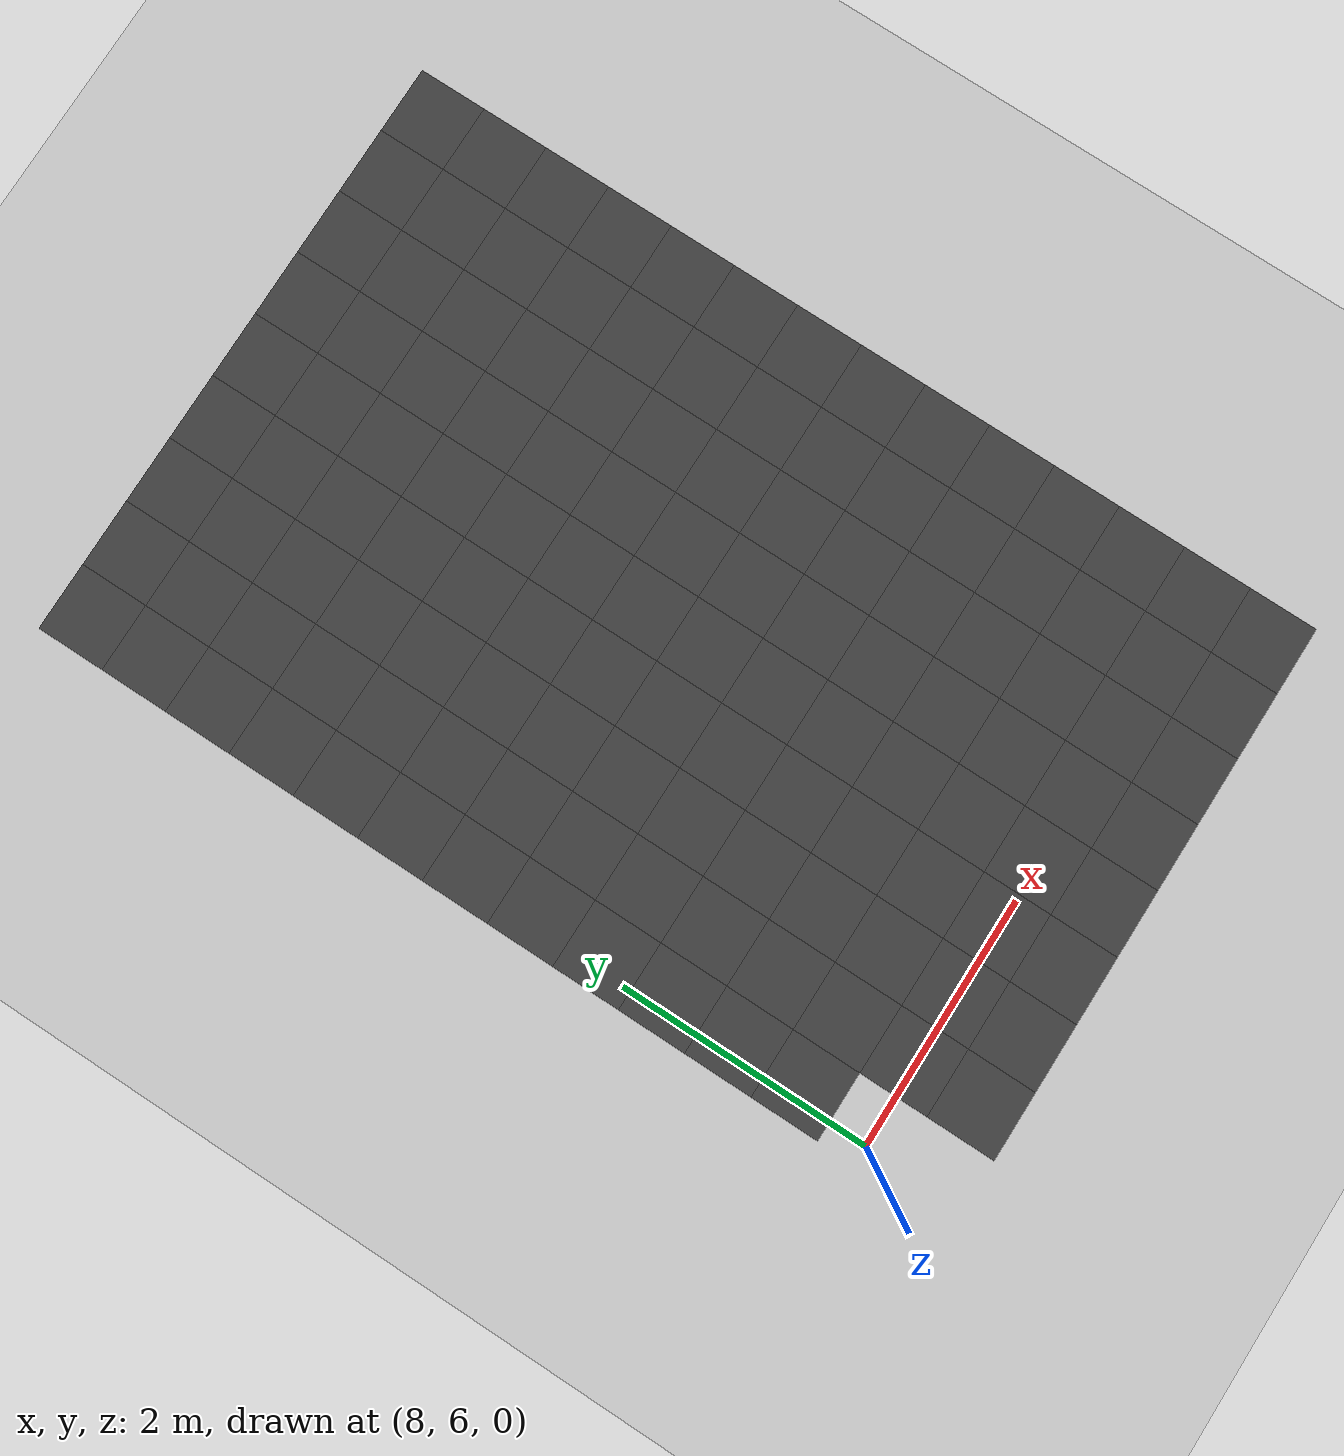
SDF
<sdf version="1.7">
 <world name="map_14802">
  <model name="ground_plane">
   <static>true</static>
   <link name="link">
    <collision name="collision">
     <geometry><plane><normal>0 0 1</normal><size>200 200</size></plane></geometry>
    </collision>
    <visual name="visual">
     <geometry><plane><normal>0 0 1</normal><size>200 200</size></plane></geometry>
     <material><ambient>0.8 0.8 0.8 1</ambient><diffuse>0.8 0.8 0.8 1</diffuse></material>
    </visual>
   </link>
  </model>
  <model name="maze_environment">
   <static>true</static>
   <link name="wall_41">
    <pose>8.250 12.250 0.500 0 0 0</pose>
    <collision name="col"><geometry><box><size>0.5 0.5 1.0</size></box></geometry></collision>
    <visual name="vis">
     <geometry><box><size>0.5 0.5 1.0</size></box></geometry>
     <material><ambient>0.15 0.15 0.15 1</ambient><diffuse>0.25 0.25 0.25 1</diffuse></material>
    </visual>
   </link>
   <link name="wall_42">
    <pose>8.750 12.250 0.500 0 0 0</pose>
    <collision name="col"><geometry><box><size>0.5 0.5 1.0</size></box></geometry></collision>
    <visual name="vis">
     <geometry><box><size>0.5 0.5 1.0</size></box></geometry>
     <material><ambient>0.15 0.15 0.15 1</ambient><diffuse>0.25 0.25 0.25 1</diffuse></material>
    </visual>
   </link>
   <link name="wall_43">
    <pose>9.250 12.250 0.500 0 0 0</pose>
    <collision name="col"><geometry><box><size>0.5 0.5 1.0</size></box></geometry></collision>
    <visual name="vis">
     <geometry><box><size>0.5 0.5 1.0</size></box></geometry>
     <material><ambient>0.15 0.15 0.15 1</ambient><diffuse>0.25 0.25 0.25 1</diffuse></material>
    </visual>
   </link>
   <link name="wall_44">
    <pose>9.750 12.250 0.500 0 0 0</pose>
    <collision name="col"><geometry><box><size>0.5 0.5 1.0</size></box></geometry></collision>
    <visual name="vis">
     <geometry><box><size>0.5 0.5 1.0</size></box></geometry>
     <material><ambient>0.15 0.15 0.15 1</ambient><diffuse>0.25 0.25 0.25 1</diffuse></material>
    </visual>
   </link>
   <link name="wall_45">
    <pose>10.250 12.250 0.500 0 0 0</pose>
    <collision name="col"><geometry><box><size>0.5 0.5 1.0</size></box></geometry></collision>
    <visual name="vis">
     <geometry><box><size>0.5 0.5 1.0</size></box></geometry>
     <material><ambient>0.15 0.15 0.15 1</ambient><diffuse>0.25 0.25 0.25 1</diffuse></material>
    </visual>
   </link>
   <link name="wall_46">
    <pose>10.750 12.250 0.500 0 0 0</pose>
    <collision name="col"><geometry><box><size>0.5 0.5 1.0</size></box></geometry></collision>
    <visual name="vis">
     <geometry><box><size>0.5 0.5 1.0</size></box></geometry>
     <material><ambient>0.15 0.15 0.15 1</ambient><diffuse>0.25 0.25 0.25 1</diffuse></material>
    </visual>
   </link>
   <link name="wall_47">
    <pose>11.250 12.250 0.500 0 0 0</pose>
    <collision name="col"><geometry><box><size>0.5 0.5 1.0</size></box></geometry></collision>
    <visual name="vis">
     <geometry><box><size>0.5 0.5 1.0</size></box></geometry>
     <material><ambient>0.15 0.15 0.15 1</ambient><diffuse>0.25 0.25 0.25 1</diffuse></material>
    </visual>
   </link>
   <link name="wall_48">
    <pose>11.750 12.250 0.500 0 0 0</pose>
    <collision name="col"><geometry><box><size>0.5 0.5 1.0</size></box></geometry></collision>
    <visual name="vis">
     <geometry><box><size>0.5 0.5 1.0</size></box></geometry>
     <material><ambient>0.15 0.15 0.15 1</ambient><diffuse>0.25 0.25 0.25 1</diffuse></material>
    </visual>
   </link>
   <link name="wall_49">
    <pose>12.250 12.250 0.500 0 0 0</pose>
    <collision name="col"><geometry><box><size>0.5 0.5 1.0</size></box></geometry></collision>
    <visual name="vis">
     <geometry><box><size>0.5 0.5 1.0</size></box></geometry>
     <material><ambient>0.15 0.15 0.15 1</ambient><diffuse>0.25 0.25 0.25 1</diffuse></material>
    </visual>
   </link>
   <link name="wall_88">
    <pose>8.250 11.750 0.500 0 0 0</pose>
    <collision name="col"><geometry><box><size>0.5 0.5 1.0</size></box></geometry></collision>
    <visual name="vis">
     <geometry><box><size>0.5 0.5 1.0</size></box></geometry>
     <material><ambient>0.15 0.15 0.15 1</ambient><diffuse>0.25 0.25 0.25 1</diffuse></material>
    </visual>
   </link>
   <link name="wall_89">
    <pose>8.750 11.750 0.500 0 0 0</pose>
    <collision name="col"><geometry><box><size>0.5 0.5 1.0</size></box></geometry></collision>
    <visual name="vis">
     <geometry><box><size>0.5 0.5 1.0</size></box></geometry>
     <material><ambient>0.15 0.15 0.15 1</ambient><diffuse>0.25 0.25 0.25 1</diffuse></material>
    </visual>
   </link>
   <link name="wall_90">
    <pose>9.250 11.750 0.500 0 0 0</pose>
    <collision name="col"><geometry><box><size>0.5 0.5 1.0</size></box></geometry></collision>
    <visual name="vis">
     <geometry><box><size>0.5 0.5 1.0</size></box></geometry>
     <material><ambient>0.15 0.15 0.15 1</ambient><diffuse>0.25 0.25 0.25 1</diffuse></material>
    </visual>
   </link>
   <link name="wall_91">
    <pose>9.750 11.750 0.500 0 0 0</pose>
    <collision name="col"><geometry><box><size>0.5 0.5 1.0</size></box></geometry></collision>
    <visual name="vis">
     <geometry><box><size>0.5 0.5 1.0</size></box></geometry>
     <material><ambient>0.15 0.15 0.15 1</ambient><diffuse>0.25 0.25 0.25 1</diffuse></material>
    </visual>
   </link>
   <link name="wall_92">
    <pose>10.250 11.750 0.500 0 0 0</pose>
    <collision name="col"><geometry><box><size>0.5 0.5 1.0</size></box></geometry></collision>
    <visual name="vis">
     <geometry><box><size>0.5 0.5 1.0</size></box></geometry>
     <material><ambient>0.15 0.15 0.15 1</ambient><diffuse>0.25 0.25 0.25 1</diffuse></material>
    </visual>
   </link>
   <link name="wall_93">
    <pose>10.750 11.750 0.500 0 0 0</pose>
    <collision name="col"><geometry><box><size>0.5 0.5 1.0</size></box></geometry></collision>
    <visual name="vis">
     <geometry><box><size>0.5 0.5 1.0</size></box></geometry>
     <material><ambient>0.15 0.15 0.15 1</ambient><diffuse>0.25 0.25 0.25 1</diffuse></material>
    </visual>
   </link>
   <link name="wall_94">
    <pose>11.250 11.750 0.500 0 0 0</pose>
    <collision name="col"><geometry><box><size>0.5 0.5 1.0</size></box></geometry></collision>
    <visual name="vis">
     <geometry><box><size>0.5 0.5 1.0</size></box></geometry>
     <material><ambient>0.15 0.15 0.15 1</ambient><diffuse>0.25 0.25 0.25 1</diffuse></material>
    </visual>
   </link>
   <link name="wall_95">
    <pose>11.750 11.750 0.500 0 0 0</pose>
    <collision name="col"><geometry><box><size>0.5 0.5 1.0</size></box></geometry></collision>
    <visual name="vis">
     <geometry><box><size>0.5 0.5 1.0</size></box></geometry>
     <material><ambient>0.15 0.15 0.15 1</ambient><diffuse>0.25 0.25 0.25 1</diffuse></material>
    </visual>
   </link>
   <link name="wall_96">
    <pose>12.250 11.750 0.500 0 0 0</pose>
    <collision name="col"><geometry><box><size>0.5 0.5 1.0</size></box></geometry></collision>
    <visual name="vis">
     <geometry><box><size>0.5 0.5 1.0</size></box></geometry>
     <material><ambient>0.15 0.15 0.15 1</ambient><diffuse>0.25 0.25 0.25 1</diffuse></material>
    </visual>
   </link>
   <link name="wall_130">
    <pose>8.250 11.250 0.500 0 0 0</pose>
    <collision name="col"><geometry><box><size>0.5 0.5 1.0</size></box></geometry></collision>
    <visual name="vis">
     <geometry><box><size>0.5 0.5 1.0</size></box></geometry>
     <material><ambient>0.15 0.15 0.15 1</ambient><diffuse>0.25 0.25 0.25 1</diffuse></material>
    </visual>
   </link>
   <link name="wall_131">
    <pose>8.750 11.250 0.500 0 0 0</pose>
    <collision name="col"><geometry><box><size>0.5 0.5 1.0</size></box></geometry></collision>
    <visual name="vis">
     <geometry><box><size>0.5 0.5 1.0</size></box></geometry>
     <material><ambient>0.15 0.15 0.15 1</ambient><diffuse>0.25 0.25 0.25 1</diffuse></material>
    </visual>
   </link>
   <link name="wall_132">
    <pose>9.250 11.250 0.500 0 0 0</pose>
    <collision name="col"><geometry><box><size>0.5 0.5 1.0</size></box></geometry></collision>
    <visual name="vis">
     <geometry><box><size>0.5 0.5 1.0</size></box></geometry>
     <material><ambient>0.15 0.15 0.15 1</ambient><diffuse>0.25 0.25 0.25 1</diffuse></material>
    </visual>
   </link>
   <link name="wall_133">
    <pose>9.750 11.250 0.500 0 0 0</pose>
    <collision name="col"><geometry><box><size>0.5 0.5 1.0</size></box></geometry></collision>
    <visual name="vis">
     <geometry><box><size>0.5 0.5 1.0</size></box></geometry>
     <material><ambient>0.15 0.15 0.15 1</ambient><diffuse>0.25 0.25 0.25 1</diffuse></material>
    </visual>
   </link>
   <link name="wall_134">
    <pose>10.250 11.250 0.500 0 0 0</pose>
    <collision name="col"><geometry><box><size>0.5 0.5 1.0</size></box></geometry></collision>
    <visual name="vis">
     <geometry><box><size>0.5 0.5 1.0</size></box></geometry>
     <material><ambient>0.15 0.15 0.15 1</ambient><diffuse>0.25 0.25 0.25 1</diffuse></material>
    </visual>
   </link>
   <link name="wall_135">
    <pose>10.750 11.250 0.500 0 0 0</pose>
    <collision name="col"><geometry><box><size>0.5 0.5 1.0</size></box></geometry></collision>
    <visual name="vis">
     <geometry><box><size>0.5 0.5 1.0</size></box></geometry>
     <material><ambient>0.15 0.15 0.15 1</ambient><diffuse>0.25 0.25 0.25 1</diffuse></material>
    </visual>
   </link>
   <link name="wall_136">
    <pose>11.250 11.250 0.500 0 0 0</pose>
    <collision name="col"><geometry><box><size>0.5 0.5 1.0</size></box></geometry></collision>
    <visual name="vis">
     <geometry><box><size>0.5 0.5 1.0</size></box></geometry>
     <material><ambient>0.15 0.15 0.15 1</ambient><diffuse>0.25 0.25 0.25 1</diffuse></material>
    </visual>
   </link>
   <link name="wall_137">
    <pose>11.750 11.250 0.500 0 0 0</pose>
    <collision name="col"><geometry><box><size>0.5 0.5 1.0</size></box></geometry></collision>
    <visual name="vis">
     <geometry><box><size>0.5 0.5 1.0</size></box></geometry>
     <material><ambient>0.15 0.15 0.15 1</ambient><diffuse>0.25 0.25 0.25 1</diffuse></material>
    </visual>
   </link>
   <link name="wall_138">
    <pose>12.250 11.250 0.500 0 0 0</pose>
    <collision name="col"><geometry><box><size>0.5 0.5 1.0</size></box></geometry></collision>
    <visual name="vis">
     <geometry><box><size>0.5 0.5 1.0</size></box></geometry>
     <material><ambient>0.15 0.15 0.15 1</ambient><diffuse>0.25 0.25 0.25 1</diffuse></material>
    </visual>
   </link>
   <link name="wall_172">
    <pose>8.250 10.750 0.500 0 0 0</pose>
    <collision name="col"><geometry><box><size>0.5 0.5 1.0</size></box></geometry></collision>
    <visual name="vis">
     <geometry><box><size>0.5 0.5 1.0</size></box></geometry>
     <material><ambient>0.15 0.15 0.15 1</ambient><diffuse>0.25 0.25 0.25 1</diffuse></material>
    </visual>
   </link>
   <link name="wall_173">
    <pose>8.750 10.750 0.500 0 0 0</pose>
    <collision name="col"><geometry><box><size>0.5 0.5 1.0</size></box></geometry></collision>
    <visual name="vis">
     <geometry><box><size>0.5 0.5 1.0</size></box></geometry>
     <material><ambient>0.15 0.15 0.15 1</ambient><diffuse>0.25 0.25 0.25 1</diffuse></material>
    </visual>
   </link>
   <link name="wall_174">
    <pose>9.250 10.750 0.500 0 0 0</pose>
    <collision name="col"><geometry><box><size>0.5 0.5 1.0</size></box></geometry></collision>
    <visual name="vis">
     <geometry><box><size>0.5 0.5 1.0</size></box></geometry>
     <material><ambient>0.15 0.15 0.15 1</ambient><diffuse>0.25 0.25 0.25 1</diffuse></material>
    </visual>
   </link>
   <link name="wall_175">
    <pose>9.750 10.750 0.500 0 0 0</pose>
    <collision name="col"><geometry><box><size>0.5 0.5 1.0</size></box></geometry></collision>
    <visual name="vis">
     <geometry><box><size>0.5 0.5 1.0</size></box></geometry>
     <material><ambient>0.15 0.15 0.15 1</ambient><diffuse>0.25 0.25 0.25 1</diffuse></material>
    </visual>
   </link>
   <link name="wall_176">
    <pose>10.250 10.750 0.500 0 0 0</pose>
    <collision name="col"><geometry><box><size>0.5 0.5 1.0</size></box></geometry></collision>
    <visual name="vis">
     <geometry><box><size>0.5 0.5 1.0</size></box></geometry>
     <material><ambient>0.15 0.15 0.15 1</ambient><diffuse>0.25 0.25 0.25 1</diffuse></material>
    </visual>
   </link>
   <link name="wall_177">
    <pose>10.750 10.750 0.500 0 0 0</pose>
    <collision name="col"><geometry><box><size>0.5 0.5 1.0</size></box></geometry></collision>
    <visual name="vis">
     <geometry><box><size>0.5 0.5 1.0</size></box></geometry>
     <material><ambient>0.15 0.15 0.15 1</ambient><diffuse>0.25 0.25 0.25 1</diffuse></material>
    </visual>
   </link>
   <link name="wall_178">
    <pose>11.250 10.750 0.500 0 0 0</pose>
    <collision name="col"><geometry><box><size>0.5 0.5 1.0</size></box></geometry></collision>
    <visual name="vis">
     <geometry><box><size>0.5 0.5 1.0</size></box></geometry>
     <material><ambient>0.15 0.15 0.15 1</ambient><diffuse>0.25 0.25 0.25 1</diffuse></material>
    </visual>
   </link>
   <link name="wall_179">
    <pose>11.750 10.750 0.500 0 0 0</pose>
    <collision name="col"><geometry><box><size>0.5 0.5 1.0</size></box></geometry></collision>
    <visual name="vis">
     <geometry><box><size>0.5 0.5 1.0</size></box></geometry>
     <material><ambient>0.15 0.15 0.15 1</ambient><diffuse>0.25 0.25 0.25 1</diffuse></material>
    </visual>
   </link>
   <link name="wall_180">
    <pose>12.250 10.750 0.500 0 0 0</pose>
    <collision name="col"><geometry><box><size>0.5 0.5 1.0</size></box></geometry></collision>
    <visual name="vis">
     <geometry><box><size>0.5 0.5 1.0</size></box></geometry>
     <material><ambient>0.15 0.15 0.15 1</ambient><diffuse>0.25 0.25 0.25 1</diffuse></material>
    </visual>
   </link>
   <link name="wall_208">
    <pose>8.250 10.250 0.500 0 0 0</pose>
    <collision name="col"><geometry><box><size>0.5 0.5 1.0</size></box></geometry></collision>
    <visual name="vis">
     <geometry><box><size>0.5 0.5 1.0</size></box></geometry>
     <material><ambient>0.15 0.15 0.15 1</ambient><diffuse>0.25 0.25 0.25 1</diffuse></material>
    </visual>
   </link>
   <link name="wall_209">
    <pose>8.750 10.250 0.500 0 0 0</pose>
    <collision name="col"><geometry><box><size>0.5 0.5 1.0</size></box></geometry></collision>
    <visual name="vis">
     <geometry><box><size>0.5 0.5 1.0</size></box></geometry>
     <material><ambient>0.15 0.15 0.15 1</ambient><diffuse>0.25 0.25 0.25 1</diffuse></material>
    </visual>
   </link>
   <link name="wall_210">
    <pose>9.250 10.250 0.500 0 0 0</pose>
    <collision name="col"><geometry><box><size>0.5 0.5 1.0</size></box></geometry></collision>
    <visual name="vis">
     <geometry><box><size>0.5 0.5 1.0</size></box></geometry>
     <material><ambient>0.15 0.15 0.15 1</ambient><diffuse>0.25 0.25 0.25 1</diffuse></material>
    </visual>
   </link>
   <link name="wall_211">
    <pose>9.750 10.250 0.500 0 0 0</pose>
    <collision name="col"><geometry><box><size>0.5 0.5 1.0</size></box></geometry></collision>
    <visual name="vis">
     <geometry><box><size>0.5 0.5 1.0</size></box></geometry>
     <material><ambient>0.15 0.15 0.15 1</ambient><diffuse>0.25 0.25 0.25 1</diffuse></material>
    </visual>
   </link>
   <link name="wall_212">
    <pose>10.250 10.250 0.500 0 0 0</pose>
    <collision name="col"><geometry><box><size>0.5 0.5 1.0</size></box></geometry></collision>
    <visual name="vis">
     <geometry><box><size>0.5 0.5 1.0</size></box></geometry>
     <material><ambient>0.15 0.15 0.15 1</ambient><diffuse>0.25 0.25 0.25 1</diffuse></material>
    </visual>
   </link>
   <link name="wall_213">
    <pose>10.750 10.250 0.500 0 0 0</pose>
    <collision name="col"><geometry><box><size>0.5 0.5 1.0</size></box></geometry></collision>
    <visual name="vis">
     <geometry><box><size>0.5 0.5 1.0</size></box></geometry>
     <material><ambient>0.15 0.15 0.15 1</ambient><diffuse>0.25 0.25 0.25 1</diffuse></material>
    </visual>
   </link>
   <link name="wall_214">
    <pose>11.250 10.250 0.500 0 0 0</pose>
    <collision name="col"><geometry><box><size>0.5 0.5 1.0</size></box></geometry></collision>
    <visual name="vis">
     <geometry><box><size>0.5 0.5 1.0</size></box></geometry>
     <material><ambient>0.15 0.15 0.15 1</ambient><diffuse>0.25 0.25 0.25 1</diffuse></material>
    </visual>
   </link>
   <link name="wall_215">
    <pose>11.750 10.250 0.500 0 0 0</pose>
    <collision name="col"><geometry><box><size>0.5 0.5 1.0</size></box></geometry></collision>
    <visual name="vis">
     <geometry><box><size>0.5 0.5 1.0</size></box></geometry>
     <material><ambient>0.15 0.15 0.15 1</ambient><diffuse>0.25 0.25 0.25 1</diffuse></material>
    </visual>
   </link>
   <link name="wall_216">
    <pose>12.250 10.250 0.500 0 0 0</pose>
    <collision name="col"><geometry><box><size>0.5 0.5 1.0</size></box></geometry></collision>
    <visual name="vis">
     <geometry><box><size>0.5 0.5 1.0</size></box></geometry>
     <material><ambient>0.15 0.15 0.15 1</ambient><diffuse>0.25 0.25 0.25 1</diffuse></material>
    </visual>
   </link>
   <link name="wall_237">
    <pose>8.250 9.750 0.500 0 0 0</pose>
    <collision name="col"><geometry><box><size>0.5 0.5 1.0</size></box></geometry></collision>
    <visual name="vis">
     <geometry><box><size>0.5 0.5 1.0</size></box></geometry>
     <material><ambient>0.15 0.15 0.15 1</ambient><diffuse>0.25 0.25 0.25 1</diffuse></material>
    </visual>
   </link>
   <link name="wall_238">
    <pose>8.750 9.750 0.500 0 0 0</pose>
    <collision name="col"><geometry><box><size>0.5 0.5 1.0</size></box></geometry></collision>
    <visual name="vis">
     <geometry><box><size>0.5 0.5 1.0</size></box></geometry>
     <material><ambient>0.15 0.15 0.15 1</ambient><diffuse>0.25 0.25 0.25 1</diffuse></material>
    </visual>
   </link>
   <link name="wall_239">
    <pose>9.250 9.750 0.500 0 0 0</pose>
    <collision name="col"><geometry><box><size>0.5 0.5 1.0</size></box></geometry></collision>
    <visual name="vis">
     <geometry><box><size>0.5 0.5 1.0</size></box></geometry>
     <material><ambient>0.15 0.15 0.15 1</ambient><diffuse>0.25 0.25 0.25 1</diffuse></material>
    </visual>
   </link>
   <link name="wall_240">
    <pose>9.750 9.750 0.500 0 0 0</pose>
    <collision name="col"><geometry><box><size>0.5 0.5 1.0</size></box></geometry></collision>
    <visual name="vis">
     <geometry><box><size>0.5 0.5 1.0</size></box></geometry>
     <material><ambient>0.15 0.15 0.15 1</ambient><diffuse>0.25 0.25 0.25 1</diffuse></material>
    </visual>
   </link>
   <link name="wall_241">
    <pose>10.250 9.750 0.500 0 0 0</pose>
    <collision name="col"><geometry><box><size>0.5 0.5 1.0</size></box></geometry></collision>
    <visual name="vis">
     <geometry><box><size>0.5 0.5 1.0</size></box></geometry>
     <material><ambient>0.15 0.15 0.15 1</ambient><diffuse>0.25 0.25 0.25 1</diffuse></material>
    </visual>
   </link>
   <link name="wall_242">
    <pose>10.750 9.750 0.500 0 0 0</pose>
    <collision name="col"><geometry><box><size>0.5 0.5 1.0</size></box></geometry></collision>
    <visual name="vis">
     <geometry><box><size>0.5 0.5 1.0</size></box></geometry>
     <material><ambient>0.15 0.15 0.15 1</ambient><diffuse>0.25 0.25 0.25 1</diffuse></material>
    </visual>
   </link>
   <link name="wall_243">
    <pose>11.250 9.750 0.500 0 0 0</pose>
    <collision name="col"><geometry><box><size>0.5 0.5 1.0</size></box></geometry></collision>
    <visual name="vis">
     <geometry><box><size>0.5 0.5 1.0</size></box></geometry>
     <material><ambient>0.15 0.15 0.15 1</ambient><diffuse>0.25 0.25 0.25 1</diffuse></material>
    </visual>
   </link>
   <link name="wall_244">
    <pose>11.750 9.750 0.500 0 0 0</pose>
    <collision name="col"><geometry><box><size>0.5 0.5 1.0</size></box></geometry></collision>
    <visual name="vis">
     <geometry><box><size>0.5 0.5 1.0</size></box></geometry>
     <material><ambient>0.15 0.15 0.15 1</ambient><diffuse>0.25 0.25 0.25 1</diffuse></material>
    </visual>
   </link>
   <link name="wall_245">
    <pose>12.250 9.750 0.500 0 0 0</pose>
    <collision name="col"><geometry><box><size>0.5 0.5 1.0</size></box></geometry></collision>
    <visual name="vis">
     <geometry><box><size>0.5 0.5 1.0</size></box></geometry>
     <material><ambient>0.15 0.15 0.15 1</ambient><diffuse>0.25 0.25 0.25 1</diffuse></material>
    </visual>
   </link>
   <link name="wall_268">
    <pose>8.250 9.250 0.500 0 0 0</pose>
    <collision name="col"><geometry><box><size>0.5 0.5 1.0</size></box></geometry></collision>
    <visual name="vis">
     <geometry><box><size>0.5 0.5 1.0</size></box></geometry>
     <material><ambient>0.15 0.15 0.15 1</ambient><diffuse>0.25 0.25 0.25 1</diffuse></material>
    </visual>
   </link>
   <link name="wall_269">
    <pose>8.750 9.250 0.500 0 0 0</pose>
    <collision name="col"><geometry><box><size>0.5 0.5 1.0</size></box></geometry></collision>
    <visual name="vis">
     <geometry><box><size>0.5 0.5 1.0</size></box></geometry>
     <material><ambient>0.15 0.15 0.15 1</ambient><diffuse>0.25 0.25 0.25 1</diffuse></material>
    </visual>
   </link>
   <link name="wall_270">
    <pose>9.250 9.250 0.500 0 0 0</pose>
    <collision name="col"><geometry><box><size>0.5 0.5 1.0</size></box></geometry></collision>
    <visual name="vis">
     <geometry><box><size>0.5 0.5 1.0</size></box></geometry>
     <material><ambient>0.15 0.15 0.15 1</ambient><diffuse>0.25 0.25 0.25 1</diffuse></material>
    </visual>
   </link>
   <link name="wall_271">
    <pose>9.750 9.250 0.500 0 0 0</pose>
    <collision name="col"><geometry><box><size>0.5 0.5 1.0</size></box></geometry></collision>
    <visual name="vis">
     <geometry><box><size>0.5 0.5 1.0</size></box></geometry>
     <material><ambient>0.15 0.15 0.15 1</ambient><diffuse>0.25 0.25 0.25 1</diffuse></material>
    </visual>
   </link>
   <link name="wall_272">
    <pose>10.250 9.250 0.500 0 0 0</pose>
    <collision name="col"><geometry><box><size>0.5 0.5 1.0</size></box></geometry></collision>
    <visual name="vis">
     <geometry><box><size>0.5 0.5 1.0</size></box></geometry>
     <material><ambient>0.15 0.15 0.15 1</ambient><diffuse>0.25 0.25 0.25 1</diffuse></material>
    </visual>
   </link>
   <link name="wall_273">
    <pose>10.750 9.250 0.500 0 0 0</pose>
    <collision name="col"><geometry><box><size>0.5 0.5 1.0</size></box></geometry></collision>
    <visual name="vis">
     <geometry><box><size>0.5 0.5 1.0</size></box></geometry>
     <material><ambient>0.15 0.15 0.15 1</ambient><diffuse>0.25 0.25 0.25 1</diffuse></material>
    </visual>
   </link>
   <link name="wall_274">
    <pose>11.250 9.250 0.500 0 0 0</pose>
    <collision name="col"><geometry><box><size>0.5 0.5 1.0</size></box></geometry></collision>
    <visual name="vis">
     <geometry><box><size>0.5 0.5 1.0</size></box></geometry>
     <material><ambient>0.15 0.15 0.15 1</ambient><diffuse>0.25 0.25 0.25 1</diffuse></material>
    </visual>
   </link>
   <link name="wall_275">
    <pose>11.750 9.250 0.500 0 0 0</pose>
    <collision name="col"><geometry><box><size>0.5 0.5 1.0</size></box></geometry></collision>
    <visual name="vis">
     <geometry><box><size>0.5 0.5 1.0</size></box></geometry>
     <material><ambient>0.15 0.15 0.15 1</ambient><diffuse>0.25 0.25 0.25 1</diffuse></material>
    </visual>
   </link>
   <link name="wall_276">
    <pose>12.250 9.250 0.500 0 0 0</pose>
    <collision name="col"><geometry><box><size>0.5 0.5 1.0</size></box></geometry></collision>
    <visual name="vis">
     <geometry><box><size>0.5 0.5 1.0</size></box></geometry>
     <material><ambient>0.15 0.15 0.15 1</ambient><diffuse>0.25 0.25 0.25 1</diffuse></material>
    </visual>
   </link>
   <link name="wall_294">
    <pose>8.250 8.750 0.500 0 0 0</pose>
    <collision name="col"><geometry><box><size>0.5 0.5 1.0</size></box></geometry></collision>
    <visual name="vis">
     <geometry><box><size>0.5 0.5 1.0</size></box></geometry>
     <material><ambient>0.15 0.15 0.15 1</ambient><diffuse>0.25 0.25 0.25 1</diffuse></material>
    </visual>
   </link>
   <link name="wall_295">
    <pose>8.750 8.750 0.500 0 0 0</pose>
    <collision name="col"><geometry><box><size>0.5 0.5 1.0</size></box></geometry></collision>
    <visual name="vis">
     <geometry><box><size>0.5 0.5 1.0</size></box></geometry>
     <material><ambient>0.15 0.15 0.15 1</ambient><diffuse>0.25 0.25 0.25 1</diffuse></material>
    </visual>
   </link>
   <link name="wall_296">
    <pose>9.250 8.750 0.500 0 0 0</pose>
    <collision name="col"><geometry><box><size>0.5 0.5 1.0</size></box></geometry></collision>
    <visual name="vis">
     <geometry><box><size>0.5 0.5 1.0</size></box></geometry>
     <material><ambient>0.15 0.15 0.15 1</ambient><diffuse>0.25 0.25 0.25 1</diffuse></material>
    </visual>
   </link>
   <link name="wall_297">
    <pose>9.750 8.750 0.500 0 0 0</pose>
    <collision name="col"><geometry><box><size>0.5 0.5 1.0</size></box></geometry></collision>
    <visual name="vis">
     <geometry><box><size>0.5 0.5 1.0</size></box></geometry>
     <material><ambient>0.15 0.15 0.15 1</ambient><diffuse>0.25 0.25 0.25 1</diffuse></material>
    </visual>
   </link>
   <link name="wall_298">
    <pose>10.250 8.750 0.500 0 0 0</pose>
    <collision name="col"><geometry><box><size>0.5 0.5 1.0</size></box></geometry></collision>
    <visual name="vis">
     <geometry><box><size>0.5 0.5 1.0</size></box></geometry>
     <material><ambient>0.15 0.15 0.15 1</ambient><diffuse>0.25 0.25 0.25 1</diffuse></material>
    </visual>
   </link>
   <link name="wall_299">
    <pose>10.750 8.750 0.500 0 0 0</pose>
    <collision name="col"><geometry><box><size>0.5 0.5 1.0</size></box></geometry></collision>
    <visual name="vis">
     <geometry><box><size>0.5 0.5 1.0</size></box></geometry>
     <material><ambient>0.15 0.15 0.15 1</ambient><diffuse>0.25 0.25 0.25 1</diffuse></material>
    </visual>
   </link>
   <link name="wall_300">
    <pose>11.250 8.750 0.500 0 0 0</pose>
    <collision name="col"><geometry><box><size>0.5 0.5 1.0</size></box></geometry></collision>
    <visual name="vis">
     <geometry><box><size>0.5 0.5 1.0</size></box></geometry>
     <material><ambient>0.15 0.15 0.15 1</ambient><diffuse>0.25 0.25 0.25 1</diffuse></material>
    </visual>
   </link>
   <link name="wall_301">
    <pose>11.750 8.750 0.500 0 0 0</pose>
    <collision name="col"><geometry><box><size>0.5 0.5 1.0</size></box></geometry></collision>
    <visual name="vis">
     <geometry><box><size>0.5 0.5 1.0</size></box></geometry>
     <material><ambient>0.15 0.15 0.15 1</ambient><diffuse>0.25 0.25 0.25 1</diffuse></material>
    </visual>
   </link>
   <link name="wall_302">
    <pose>12.250 8.750 0.500 0 0 0</pose>
    <collision name="col"><geometry><box><size>0.5 0.5 1.0</size></box></geometry></collision>
    <visual name="vis">
     <geometry><box><size>0.5 0.5 1.0</size></box></geometry>
     <material><ambient>0.15 0.15 0.15 1</ambient><diffuse>0.25 0.25 0.25 1</diffuse></material>
    </visual>
   </link>
   <link name="wall_323">
    <pose>8.250 8.250 0.500 0 0 0</pose>
    <collision name="col"><geometry><box><size>0.5 0.5 1.0</size></box></geometry></collision>
    <visual name="vis">
     <geometry><box><size>0.5 0.5 1.0</size></box></geometry>
     <material><ambient>0.15 0.15 0.15 1</ambient><diffuse>0.25 0.25 0.25 1</diffuse></material>
    </visual>
   </link>
   <link name="wall_324">
    <pose>8.750 8.250 0.500 0 0 0</pose>
    <collision name="col"><geometry><box><size>0.5 0.5 1.0</size></box></geometry></collision>
    <visual name="vis">
     <geometry><box><size>0.5 0.5 1.0</size></box></geometry>
     <material><ambient>0.15 0.15 0.15 1</ambient><diffuse>0.25 0.25 0.25 1</diffuse></material>
    </visual>
   </link>
   <link name="wall_325">
    <pose>9.250 8.250 0.500 0 0 0</pose>
    <collision name="col"><geometry><box><size>0.5 0.5 1.0</size></box></geometry></collision>
    <visual name="vis">
     <geometry><box><size>0.5 0.5 1.0</size></box></geometry>
     <material><ambient>0.15 0.15 0.15 1</ambient><diffuse>0.25 0.25 0.25 1</diffuse></material>
    </visual>
   </link>
   <link name="wall_326">
    <pose>9.750 8.250 0.500 0 0 0</pose>
    <collision name="col"><geometry><box><size>0.5 0.5 1.0</size></box></geometry></collision>
    <visual name="vis">
     <geometry><box><size>0.5 0.5 1.0</size></box></geometry>
     <material><ambient>0.15 0.15 0.15 1</ambient><diffuse>0.25 0.25 0.25 1</diffuse></material>
    </visual>
   </link>
   <link name="wall_327">
    <pose>10.250 8.250 0.500 0 0 0</pose>
    <collision name="col"><geometry><box><size>0.5 0.5 1.0</size></box></geometry></collision>
    <visual name="vis">
     <geometry><box><size>0.5 0.5 1.0</size></box></geometry>
     <material><ambient>0.15 0.15 0.15 1</ambient><diffuse>0.25 0.25 0.25 1</diffuse></material>
    </visual>
   </link>
   <link name="wall_328">
    <pose>10.750 8.250 0.500 0 0 0</pose>
    <collision name="col"><geometry><box><size>0.5 0.5 1.0</size></box></geometry></collision>
    <visual name="vis">
     <geometry><box><size>0.5 0.5 1.0</size></box></geometry>
     <material><ambient>0.15 0.15 0.15 1</ambient><diffuse>0.25 0.25 0.25 1</diffuse></material>
    </visual>
   </link>
   <link name="wall_329">
    <pose>11.250 8.250 0.500 0 0 0</pose>
    <collision name="col"><geometry><box><size>0.5 0.5 1.0</size></box></geometry></collision>
    <visual name="vis">
     <geometry><box><size>0.5 0.5 1.0</size></box></geometry>
     <material><ambient>0.15 0.15 0.15 1</ambient><diffuse>0.25 0.25 0.25 1</diffuse></material>
    </visual>
   </link>
   <link name="wall_330">
    <pose>11.750 8.250 0.500 0 0 0</pose>
    <collision name="col"><geometry><box><size>0.5 0.5 1.0</size></box></geometry></collision>
    <visual name="vis">
     <geometry><box><size>0.5 0.5 1.0</size></box></geometry>
     <material><ambient>0.15 0.15 0.15 1</ambient><diffuse>0.25 0.25 0.25 1</diffuse></material>
    </visual>
   </link>
   <link name="wall_331">
    <pose>12.250 8.250 0.500 0 0 0</pose>
    <collision name="col"><geometry><box><size>0.5 0.5 1.0</size></box></geometry></collision>
    <visual name="vis">
     <geometry><box><size>0.5 0.5 1.0</size></box></geometry>
     <material><ambient>0.15 0.15 0.15 1</ambient><diffuse>0.25 0.25 0.25 1</diffuse></material>
    </visual>
   </link>
   <link name="wall_347">
    <pose>8.250 7.750 0.500 0 0 0</pose>
    <collision name="col"><geometry><box><size>0.5 0.5 1.0</size></box></geometry></collision>
    <visual name="vis">
     <geometry><box><size>0.5 0.5 1.0</size></box></geometry>
     <material><ambient>0.15 0.15 0.15 1</ambient><diffuse>0.25 0.25 0.25 1</diffuse></material>
    </visual>
   </link>
   <link name="wall_348">
    <pose>8.750 7.750 0.500 0 0 0</pose>
    <collision name="col"><geometry><box><size>0.5 0.5 1.0</size></box></geometry></collision>
    <visual name="vis">
     <geometry><box><size>0.5 0.5 1.0</size></box></geometry>
     <material><ambient>0.15 0.15 0.15 1</ambient><diffuse>0.25 0.25 0.25 1</diffuse></material>
    </visual>
   </link>
   <link name="wall_349">
    <pose>9.250 7.750 0.500 0 0 0</pose>
    <collision name="col"><geometry><box><size>0.5 0.5 1.0</size></box></geometry></collision>
    <visual name="vis">
     <geometry><box><size>0.5 0.5 1.0</size></box></geometry>
     <material><ambient>0.15 0.15 0.15 1</ambient><diffuse>0.25 0.25 0.25 1</diffuse></material>
    </visual>
   </link>
   <link name="wall_350">
    <pose>9.750 7.750 0.500 0 0 0</pose>
    <collision name="col"><geometry><box><size>0.5 0.5 1.0</size></box></geometry></collision>
    <visual name="vis">
     <geometry><box><size>0.5 0.5 1.0</size></box></geometry>
     <material><ambient>0.15 0.15 0.15 1</ambient><diffuse>0.25 0.25 0.25 1</diffuse></material>
    </visual>
   </link>
   <link name="wall_351">
    <pose>10.250 7.750 0.500 0 0 0</pose>
    <collision name="col"><geometry><box><size>0.5 0.5 1.0</size></box></geometry></collision>
    <visual name="vis">
     <geometry><box><size>0.5 0.5 1.0</size></box></geometry>
     <material><ambient>0.15 0.15 0.15 1</ambient><diffuse>0.25 0.25 0.25 1</diffuse></material>
    </visual>
   </link>
   <link name="wall_352">
    <pose>10.750 7.750 0.500 0 0 0</pose>
    <collision name="col"><geometry><box><size>0.5 0.5 1.0</size></box></geometry></collision>
    <visual name="vis">
     <geometry><box><size>0.5 0.5 1.0</size></box></geometry>
     <material><ambient>0.15 0.15 0.15 1</ambient><diffuse>0.25 0.25 0.25 1</diffuse></material>
    </visual>
   </link>
   <link name="wall_353">
    <pose>11.250 7.750 0.500 0 0 0</pose>
    <collision name="col"><geometry><box><size>0.5 0.5 1.0</size></box></geometry></collision>
    <visual name="vis">
     <geometry><box><size>0.5 0.5 1.0</size></box></geometry>
     <material><ambient>0.15 0.15 0.15 1</ambient><diffuse>0.25 0.25 0.25 1</diffuse></material>
    </visual>
   </link>
   <link name="wall_354">
    <pose>11.750 7.750 0.500 0 0 0</pose>
    <collision name="col"><geometry><box><size>0.5 0.5 1.0</size></box></geometry></collision>
    <visual name="vis">
     <geometry><box><size>0.5 0.5 1.0</size></box></geometry>
     <material><ambient>0.15 0.15 0.15 1</ambient><diffuse>0.25 0.25 0.25 1</diffuse></material>
    </visual>
   </link>
   <link name="wall_355">
    <pose>12.250 7.750 0.500 0 0 0</pose>
    <collision name="col"><geometry><box><size>0.5 0.5 1.0</size></box></geometry></collision>
    <visual name="vis">
     <geometry><box><size>0.5 0.5 1.0</size></box></geometry>
     <material><ambient>0.15 0.15 0.15 1</ambient><diffuse>0.25 0.25 0.25 1</diffuse></material>
    </visual>
   </link>
   <link name="wall_373">
    <pose>8.250 7.250 0.500 0 0 0</pose>
    <collision name="col"><geometry><box><size>0.5 0.5 1.0</size></box></geometry></collision>
    <visual name="vis">
     <geometry><box><size>0.5 0.5 1.0</size></box></geometry>
     <material><ambient>0.15 0.15 0.15 1</ambient><diffuse>0.25 0.25 0.25 1</diffuse></material>
    </visual>
   </link>
   <link name="wall_374">
    <pose>8.750 7.250 0.500 0 0 0</pose>
    <collision name="col"><geometry><box><size>0.5 0.5 1.0</size></box></geometry></collision>
    <visual name="vis">
     <geometry><box><size>0.5 0.5 1.0</size></box></geometry>
     <material><ambient>0.15 0.15 0.15 1</ambient><diffuse>0.25 0.25 0.25 1</diffuse></material>
    </visual>
   </link>
   <link name="wall_375">
    <pose>9.250 7.250 0.500 0 0 0</pose>
    <collision name="col"><geometry><box><size>0.5 0.5 1.0</size></box></geometry></collision>
    <visual name="vis">
     <geometry><box><size>0.5 0.5 1.0</size></box></geometry>
     <material><ambient>0.15 0.15 0.15 1</ambient><diffuse>0.25 0.25 0.25 1</diffuse></material>
    </visual>
   </link>
   <link name="wall_376">
    <pose>9.750 7.250 0.500 0 0 0</pose>
    <collision name="col"><geometry><box><size>0.5 0.5 1.0</size></box></geometry></collision>
    <visual name="vis">
     <geometry><box><size>0.5 0.5 1.0</size></box></geometry>
     <material><ambient>0.15 0.15 0.15 1</ambient><diffuse>0.25 0.25 0.25 1</diffuse></material>
    </visual>
   </link>
   <link name="wall_377">
    <pose>10.250 7.250 0.500 0 0 0</pose>
    <collision name="col"><geometry><box><size>0.5 0.5 1.0</size></box></geometry></collision>
    <visual name="vis">
     <geometry><box><size>0.5 0.5 1.0</size></box></geometry>
     <material><ambient>0.15 0.15 0.15 1</ambient><diffuse>0.25 0.25 0.25 1</diffuse></material>
    </visual>
   </link>
   <link name="wall_378">
    <pose>10.750 7.250 0.500 0 0 0</pose>
    <collision name="col"><geometry><box><size>0.5 0.5 1.0</size></box></geometry></collision>
    <visual name="vis">
     <geometry><box><size>0.5 0.5 1.0</size></box></geometry>
     <material><ambient>0.15 0.15 0.15 1</ambient><diffuse>0.25 0.25 0.25 1</diffuse></material>
    </visual>
   </link>
   <link name="wall_379">
    <pose>11.250 7.250 0.500 0 0 0</pose>
    <collision name="col"><geometry><box><size>0.5 0.5 1.0</size></box></geometry></collision>
    <visual name="vis">
     <geometry><box><size>0.5 0.5 1.0</size></box></geometry>
     <material><ambient>0.15 0.15 0.15 1</ambient><diffuse>0.25 0.25 0.25 1</diffuse></material>
    </visual>
   </link>
   <link name="wall_380">
    <pose>11.750 7.250 0.500 0 0 0</pose>
    <collision name="col"><geometry><box><size>0.5 0.5 1.0</size></box></geometry></collision>
    <visual name="vis">
     <geometry><box><size>0.5 0.5 1.0</size></box></geometry>
     <material><ambient>0.15 0.15 0.15 1</ambient><diffuse>0.25 0.25 0.25 1</diffuse></material>
    </visual>
   </link>
   <link name="wall_381">
    <pose>12.250 7.250 0.500 0 0 0</pose>
    <collision name="col"><geometry><box><size>0.5 0.5 1.0</size></box></geometry></collision>
    <visual name="vis">
     <geometry><box><size>0.5 0.5 1.0</size></box></geometry>
     <material><ambient>0.15 0.15 0.15 1</ambient><diffuse>0.25 0.25 0.25 1</diffuse></material>
    </visual>
   </link>
   <link name="wall_401">
    <pose>8.250 6.750 0.500 0 0 0</pose>
    <collision name="col"><geometry><box><size>0.5 0.5 1.0</size></box></geometry></collision>
    <visual name="vis">
     <geometry><box><size>0.5 0.5 1.0</size></box></geometry>
     <material><ambient>0.15 0.15 0.15 1</ambient><diffuse>0.25 0.25 0.25 1</diffuse></material>
    </visual>
   </link>
   <link name="wall_402">
    <pose>8.750 6.750 0.500 0 0 0</pose>
    <collision name="col"><geometry><box><size>0.5 0.5 1.0</size></box></geometry></collision>
    <visual name="vis">
     <geometry><box><size>0.5 0.5 1.0</size></box></geometry>
     <material><ambient>0.15 0.15 0.15 1</ambient><diffuse>0.25 0.25 0.25 1</diffuse></material>
    </visual>
   </link>
   <link name="wall_403">
    <pose>9.250 6.750 0.500 0 0 0</pose>
    <collision name="col"><geometry><box><size>0.5 0.5 1.0</size></box></geometry></collision>
    <visual name="vis">
     <geometry><box><size>0.5 0.5 1.0</size></box></geometry>
     <material><ambient>0.15 0.15 0.15 1</ambient><diffuse>0.25 0.25 0.25 1</diffuse></material>
    </visual>
   </link>
   <link name="wall_404">
    <pose>9.750 6.750 0.500 0 0 0</pose>
    <collision name="col"><geometry><box><size>0.5 0.5 1.0</size></box></geometry></collision>
    <visual name="vis">
     <geometry><box><size>0.5 0.5 1.0</size></box></geometry>
     <material><ambient>0.15 0.15 0.15 1</ambient><diffuse>0.25 0.25 0.25 1</diffuse></material>
    </visual>
   </link>
   <link name="wall_405">
    <pose>10.250 6.750 0.500 0 0 0</pose>
    <collision name="col"><geometry><box><size>0.5 0.5 1.0</size></box></geometry></collision>
    <visual name="vis">
     <geometry><box><size>0.5 0.5 1.0</size></box></geometry>
     <material><ambient>0.15 0.15 0.15 1</ambient><diffuse>0.25 0.25 0.25 1</diffuse></material>
    </visual>
   </link>
   <link name="wall_406">
    <pose>10.750 6.750 0.500 0 0 0</pose>
    <collision name="col"><geometry><box><size>0.5 0.5 1.0</size></box></geometry></collision>
    <visual name="vis">
     <geometry><box><size>0.5 0.5 1.0</size></box></geometry>
     <material><ambient>0.15 0.15 0.15 1</ambient><diffuse>0.25 0.25 0.25 1</diffuse></material>
    </visual>
   </link>
   <link name="wall_407">
    <pose>11.250 6.750 0.500 0 0 0</pose>
    <collision name="col"><geometry><box><size>0.5 0.5 1.0</size></box></geometry></collision>
    <visual name="vis">
     <geometry><box><size>0.5 0.5 1.0</size></box></geometry>
     <material><ambient>0.15 0.15 0.15 1</ambient><diffuse>0.25 0.25 0.25 1</diffuse></material>
    </visual>
   </link>
   <link name="wall_408">
    <pose>11.750 6.750 0.500 0 0 0</pose>
    <collision name="col"><geometry><box><size>0.5 0.5 1.0</size></box></geometry></collision>
    <visual name="vis">
     <geometry><box><size>0.5 0.5 1.0</size></box></geometry>
     <material><ambient>0.15 0.15 0.15 1</ambient><diffuse>0.25 0.25 0.25 1</diffuse></material>
    </visual>
   </link>
   <link name="wall_409">
    <pose>12.250 6.750 0.500 0 0 0</pose>
    <collision name="col"><geometry><box><size>0.5 0.5 1.0</size></box></geometry></collision>
    <visual name="vis">
     <geometry><box><size>0.5 0.5 1.0</size></box></geometry>
     <material><ambient>0.15 0.15 0.15 1</ambient><diffuse>0.25 0.25 0.25 1</diffuse></material>
    </visual>
   </link>
   <link name="wall_437">
    <pose>8.750 6.250 0.500 0 0 0</pose>
    <collision name="col"><geometry><box><size>0.5 0.5 1.0</size></box></geometry></collision>
    <visual name="vis">
     <geometry><box><size>0.5 0.5 1.0</size></box></geometry>
     <material><ambient>0.15 0.15 0.15 1</ambient><diffuse>0.25 0.25 0.25 1</diffuse></material>
    </visual>
   </link>
   <link name="wall_438">
    <pose>9.250 6.250 0.500 0 0 0</pose>
    <collision name="col"><geometry><box><size>0.5 0.5 1.0</size></box></geometry></collision>
    <visual name="vis">
     <geometry><box><size>0.5 0.5 1.0</size></box></geometry>
     <material><ambient>0.15 0.15 0.15 1</ambient><diffuse>0.25 0.25 0.25 1</diffuse></material>
    </visual>
   </link>
   <link name="wall_439">
    <pose>9.750 6.250 0.500 0 0 0</pose>
    <collision name="col"><geometry><box><size>0.5 0.5 1.0</size></box></geometry></collision>
    <visual name="vis">
     <geometry><box><size>0.5 0.5 1.0</size></box></geometry>
     <material><ambient>0.15 0.15 0.15 1</ambient><diffuse>0.25 0.25 0.25 1</diffuse></material>
    </visual>
   </link>
   <link name="wall_440">
    <pose>10.250 6.250 0.500 0 0 0</pose>
    <collision name="col"><geometry><box><size>0.5 0.5 1.0</size></box></geometry></collision>
    <visual name="vis">
     <geometry><box><size>0.5 0.5 1.0</size></box></geometry>
     <material><ambient>0.15 0.15 0.15 1</ambient><diffuse>0.25 0.25 0.25 1</diffuse></material>
    </visual>
   </link>
   <link name="wall_441">
    <pose>10.750 6.250 0.500 0 0 0</pose>
    <collision name="col"><geometry><box><size>0.5 0.5 1.0</size></box></geometry></collision>
    <visual name="vis">
     <geometry><box><size>0.5 0.5 1.0</size></box></geometry>
     <material><ambient>0.15 0.15 0.15 1</ambient><diffuse>0.25 0.25 0.25 1</diffuse></material>
    </visual>
   </link>
   <link name="wall_442">
    <pose>11.250 6.250 0.500 0 0 0</pose>
    <collision name="col"><geometry><box><size>0.5 0.5 1.0</size></box></geometry></collision>
    <visual name="vis">
     <geometry><box><size>0.5 0.5 1.0</size></box></geometry>
     <material><ambient>0.15 0.15 0.15 1</ambient><diffuse>0.25 0.25 0.25 1</diffuse></material>
    </visual>
   </link>
   <link name="wall_443">
    <pose>11.750 6.250 0.500 0 0 0</pose>
    <collision name="col"><geometry><box><size>0.5 0.5 1.0</size></box></geometry></collision>
    <visual name="vis">
     <geometry><box><size>0.5 0.5 1.0</size></box></geometry>
     <material><ambient>0.15 0.15 0.15 1</ambient><diffuse>0.25 0.25 0.25 1</diffuse></material>
    </visual>
   </link>
   <link name="wall_444">
    <pose>12.250 6.250 0.500 0 0 0</pose>
    <collision name="col"><geometry><box><size>0.5 0.5 1.0</size></box></geometry></collision>
    <visual name="vis">
     <geometry><box><size>0.5 0.5 1.0</size></box></geometry>
     <material><ambient>0.15 0.15 0.15 1</ambient><diffuse>0.25 0.25 0.25 1</diffuse></material>
    </visual>
   </link>
   <link name="wall_478">
    <pose>8.750 5.750 0.500 0 0 0</pose>
    <collision name="col"><geometry><box><size>0.5 0.5 1.0</size></box></geometry></collision>
    <visual name="vis">
     <geometry><box><size>0.5 0.5 1.0</size></box></geometry>
     <material><ambient>0.15 0.15 0.15 1</ambient><diffuse>0.25 0.25 0.25 1</diffuse></material>
    </visual>
   </link>
   <link name="wall_479">
    <pose>9.250 5.750 0.500 0 0 0</pose>
    <collision name="col"><geometry><box><size>0.5 0.5 1.0</size></box></geometry></collision>
    <visual name="vis">
     <geometry><box><size>0.5 0.5 1.0</size></box></geometry>
     <material><ambient>0.15 0.15 0.15 1</ambient><diffuse>0.25 0.25 0.25 1</diffuse></material>
    </visual>
   </link>
   <link name="wall_480">
    <pose>9.750 5.750 0.500 0 0 0</pose>
    <collision name="col"><geometry><box><size>0.5 0.5 1.0</size></box></geometry></collision>
    <visual name="vis">
     <geometry><box><size>0.5 0.5 1.0</size></box></geometry>
     <material><ambient>0.15 0.15 0.15 1</ambient><diffuse>0.25 0.25 0.25 1</diffuse></material>
    </visual>
   </link>
   <link name="wall_481">
    <pose>10.250 5.750 0.500 0 0 0</pose>
    <collision name="col"><geometry><box><size>0.5 0.5 1.0</size></box></geometry></collision>
    <visual name="vis">
     <geometry><box><size>0.5 0.5 1.0</size></box></geometry>
     <material><ambient>0.15 0.15 0.15 1</ambient><diffuse>0.25 0.25 0.25 1</diffuse></material>
    </visual>
   </link>
   <link name="wall_482">
    <pose>10.750 5.750 0.500 0 0 0</pose>
    <collision name="col"><geometry><box><size>0.5 0.5 1.0</size></box></geometry></collision>
    <visual name="vis">
     <geometry><box><size>0.5 0.5 1.0</size></box></geometry>
     <material><ambient>0.15 0.15 0.15 1</ambient><diffuse>0.25 0.25 0.25 1</diffuse></material>
    </visual>
   </link>
   <link name="wall_483">
    <pose>11.250 5.750 0.500 0 0 0</pose>
    <collision name="col"><geometry><box><size>0.5 0.5 1.0</size></box></geometry></collision>
    <visual name="vis">
     <geometry><box><size>0.5 0.5 1.0</size></box></geometry>
     <material><ambient>0.15 0.15 0.15 1</ambient><diffuse>0.25 0.25 0.25 1</diffuse></material>
    </visual>
   </link>
   <link name="wall_484">
    <pose>11.750 5.750 0.500 0 0 0</pose>
    <collision name="col"><geometry><box><size>0.5 0.5 1.0</size></box></geometry></collision>
    <visual name="vis">
     <geometry><box><size>0.5 0.5 1.0</size></box></geometry>
     <material><ambient>0.15 0.15 0.15 1</ambient><diffuse>0.25 0.25 0.25 1</diffuse></material>
    </visual>
   </link>
   <link name="wall_485">
    <pose>12.250 5.750 0.500 0 0 0</pose>
    <collision name="col"><geometry><box><size>0.5 0.5 1.0</size></box></geometry></collision>
    <visual name="vis">
     <geometry><box><size>0.5 0.5 1.0</size></box></geometry>
     <material><ambient>0.15 0.15 0.15 1</ambient><diffuse>0.25 0.25 0.25 1</diffuse></material>
    </visual>
   </link>
  </model>
 </world>
</sdf>
